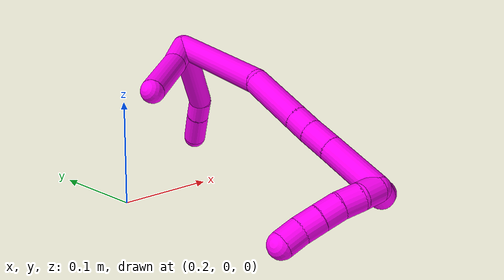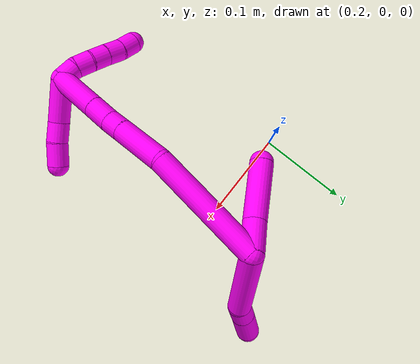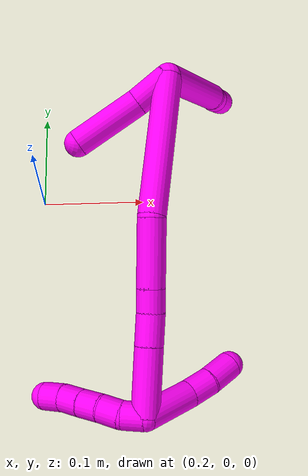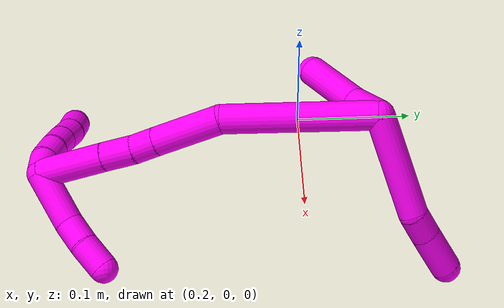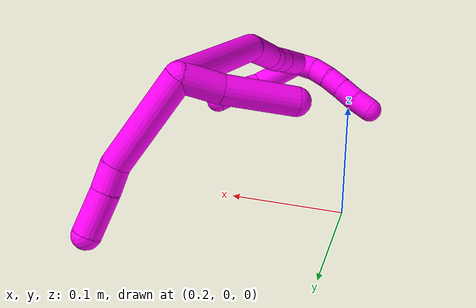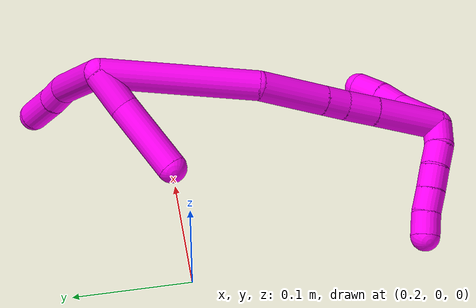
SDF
<sdf version="1.7">
 <world name="default">
  <model name="10">
   <static>0</static>
   <link name="10">
    <collision name="collision-cylinder-e_1_2_8">
     <pose>-0.013976 0.019965 -0.037181 -2.64881 -0.319789 1.14038</pose>
     <geometry><cylinder><radius>0.0125</radius><length>0.088913</length></cylinder></geometry>
     <surface>
      <friction><ode><mu>1.16</mu><mu2>1.16</mu2><slip1>0</slip1><slip2>0</slip2></ode></friction>
      <contact><ode><kp>1e+06</kp><kd>1</kd><max_vel>0</max_vel><min_depth>0.001</min_depth></ode></contact>
     </surface>
    </collision>
    <visual name="visual-cylinder-e_1_2_8">
     <pose>-0.013976 0.019965 -0.037181 -2.64881 -0.319789 1.14038</pose>
     <geometry><cylinder><radius>0.0125</radius><length>0.088913</length></cylinder></geometry>
     <material><ambient>1 0 0.964706 1</ambient></material>
    </visual>
    <collision name="collision-cylinder-e_2_8_9">
     <pose>-0.032063 0.04814 -0.081556 -2.29029 -0.360297 0.763963</pose>
     <geometry><cylinder><radius>0.0125</radius><length>0.023328</length></cylinder></geometry>
     <surface>
      <friction><ode><mu>1.16</mu><mu2>1.16</mu2><slip1>0</slip1><slip2>0</slip2></ode></friction>
      <contact><ode><kp>1e+06</kp><kd>1</kd><max_vel>0</max_vel><min_depth>0.001</min_depth></ode></contact>
     </surface>
    </collision>
    <visual name="visual-cylinder-e_2_8_9">
     <pose>-0.032063 0.04814 -0.081556 -2.29029 -0.360297 0.763963</pose>
     <geometry><cylinder><radius>0.0125</radius><length>0.023328</length></cylinder></geometry>
     <material><ambient>1 0 0.964706 1</ambient></material>
    </visual>
    <collision name="collision-cylinder-e_3_9_6">
     <pose>-0.041897 0.069458 -0.101073 -2.32537 -0.30788 0.689097</pose>
     <geometry><cylinder><radius>0.0125</radius><length>0.037759</length></cylinder></geometry>
     <surface>
      <friction><ode><mu>1.16</mu><mu2>1.16</mu2><slip1>0</slip1><slip2>0</slip2></ode></friction>
      <contact><ode><kp>1e+06</kp><kd>1</kd><max_vel>0</max_vel><min_depth>0.001</min_depth></ode></contact>
     </surface>
    </collision>
    <visual name="visual-cylinder-e_3_9_6">
     <pose>-0.041897 0.069458 -0.101073 -2.32537 -0.30788 0.689097</pose>
     <geometry><cylinder><radius>0.0125</radius><length>0.037759</length></cylinder></geometry>
     <material><ambient>1 0 0.964706 1</ambient></material>
    </visual>
    <collision name="collision-cylinder-e_1_2_10">
     <pose>-0.013743 0.001249 0.01115 -0.111542 -0.886141 0.052973</pose>
     <geometry><cylinder><radius>0.0125</radius><length>0.035483</length></cylinder></geometry>
     <surface>
      <friction><ode><mu>1.16</mu><mu2>1.16</mu2><slip1>0</slip1><slip2>0</slip2></ode></friction>
      <contact><ode><kp>1e+06</kp><kd>1</kd><max_vel>0</max_vel><min_depth>0.001</min_depth></ode></contact>
     </surface>
    </collision>
    <visual name="visual-cylinder-e_1_2_10">
     <pose>-0.013743 0.001249 0.01115 -0.111542 -0.886141 0.052973</pose>
     <geometry><cylinder><radius>0.0125</radius><length>0.035483</length></cylinder></geometry>
     <material><ambient>1 0 0.964706 1</ambient></material>
    </visual>
    <collision name="collision-cylinder-e_2_10_5">
     <pose>-0.049721 0.003245 0.04566 -0.031976 -0.760472 0.012781</pose>
     <geometry><cylinder><radius>0.0125</radius><length>0.064517</length></cylinder></geometry>
     <surface>
      <friction><ode><mu>1.16</mu><mu2>1.16</mu2><slip1>0</slip1><slip2>0</slip2></ode></friction>
      <contact><ode><kp>1e+06</kp><kd>1</kd><max_vel>0</max_vel><min_depth>0.001</min_depth></ode></contact>
     </surface>
    </collision>
    <visual name="visual-cylinder-e_2_10_5">
     <pose>-0.049721 0.003245 0.04566 -0.031976 -0.760472 0.012781</pose>
     <geometry><cylinder><radius>0.0125</radius><length>0.064517</length></cylinder></geometry>
     <material><ambient>1 0 0.964706 1</ambient></material>
    </visual>
    <collision name="collision-cylinder-e_1_2_11">
     <pose>-0.046543 -0.044435 0.014015 1.26527 -0.784861 -0.589246</pose>
     <geometry><cylinder><radius>0.0125</radius><length>0.131715</length></cylinder></geometry>
     <surface>
      <friction><ode><mu>1.16</mu><mu2>1.16</mu2><slip1>0</slip1><slip2>0</slip2></ode></friction>
      <contact><ode><kp>1e+06</kp><kd>1</kd><max_vel>0</max_vel><min_depth>0.001</min_depth></ode></contact>
     </surface>
    </collision>
    <visual name="visual-cylinder-e_1_2_11">
     <pose>-0.046543 -0.044435 0.014015 1.26527 -0.784861 -0.589246</pose>
     <geometry><cylinder><radius>0.0125</radius><length>0.131715</length></cylinder></geometry>
     <material><ambient>1 0 0.964706 1</ambient></material>
    </visual>
    <collision name="collision-cylinder-e_2_11_12">
     <pose>-0.11923 -0.103639 0.027507 1.60616 -1.05635 -1.0874</pose>
     <geometry><cylinder><radius>0.0125</radius><length>0.060062</length></cylinder></geometry>
     <surface>
      <friction><ode><mu>1.16</mu><mu2>1.16</mu2><slip1>0</slip1><slip2>0</slip2></ode></friction>
      <contact><ode><kp>1e+06</kp><kd>1</kd><max_vel>0</max_vel><min_depth>0.001</min_depth></ode></contact>
     </surface>
    </collision>
    <visual name="visual-cylinder-e_2_11_12">
     <pose>-0.11923 -0.103639 0.027507 1.60616 -1.05635 -1.0874</pose>
     <geometry><cylinder><radius>0.0125</radius><length>0.060062</length></cylinder></geometry>
     <material><ambient>1 0 0.964706 1</ambient></material>
    </visual>
    <collision name="collision-cylinder-e_3_12_13">
     <pose>-0.154422 -0.123486 0.026692 1.62847 -1.05844 -1.10943</pose>
     <geometry><cylinder><radius>0.0125</radius><length>0.02076</length></cylinder></geometry>
     <surface>
      <friction><ode><mu>1.16</mu><mu2>1.16</mu2><slip1>0</slip1><slip2>0</slip2></ode></friction>
      <contact><ode><kp>1e+06</kp><kd>1</kd><max_vel>0</max_vel><min_depth>0.001</min_depth></ode></contact>
     </surface>
    </collision>
    <visual name="visual-cylinder-e_3_12_13">
     <pose>-0.154422 -0.123486 0.026692 1.62847 -1.05844 -1.10943</pose>
     <geometry><cylinder><radius>0.0125</radius><length>0.02076</length></cylinder></geometry>
     <material><ambient>1 0 0.964706 1</ambient></material>
    </visual>
    <collision name="collision-cylinder-e_4_13_14">
     <pose>-0.175375 -0.136075 0.027152 1.4707 -1.00587 -0.923513</pose>
     <geometry><cylinder><radius>0.0125</radius><length>0.028192</length></cylinder></geometry>
     <surface>
      <friction><ode><mu>1.16</mu><mu2>1.16</mu2><slip1>0</slip1><slip2>0</slip2></ode></friction>
      <contact><ode><kp>1e+06</kp><kd>1</kd><max_vel>0</max_vel><min_depth>0.001</min_depth></ode></contact>
     </surface>
    </collision>
    <visual name="visual-cylinder-e_4_13_14">
     <pose>-0.175375 -0.136075 0.027152 1.4707 -1.00587 -0.923513</pose>
     <geometry><cylinder><radius>0.0125</radius><length>0.028192</length></cylinder></geometry>
     <material><ambient>1 0 0.964706 1</ambient></material>
    </visual>
    <collision name="collision-cylinder-e_5_14_1">
     <pose>-0.21252 -0.159064 0.029175 1.48907 -1.01913 -0.95098</pose>
     <geometry><cylinder><radius>0.0125</radius><length>0.059271</length></cylinder></geometry>
     <surface>
      <friction><ode><mu>1.16</mu><mu2>1.16</mu2><slip1>0</slip1><slip2>0</slip2></ode></friction>
      <contact><ode><kp>1e+06</kp><kd>1</kd><max_vel>0</max_vel><min_depth>0.001</min_depth></ode></contact>
     </surface>
    </collision>
    <visual name="visual-cylinder-e_5_14_1">
     <pose>-0.21252 -0.159064 0.029175 1.48907 -1.01913 -0.95098</pose>
     <geometry><cylinder><radius>0.0125</radius><length>0.059271</length></cylinder></geometry>
     <material><ambient>1 0 0.964706 1</ambient></material>
    </visual>
    <collision name="collision-cylinder-e_1_1_15">
     <pose>-0.234506 -0.167011 0.007187 -2.82835 0.132285 -0.794349</pose>
     <geometry><cylinder><radius>0.0125</radius><length>0.049321</length></cylinder></geometry>
     <surface>
      <friction><ode><mu>1.16</mu><mu2>1.16</mu2><slip1>0</slip1><slip2>0</slip2></ode></friction>
      <contact><ode><kp>1e+06</kp><kd>1</kd><max_vel>0</max_vel><min_depth>0.001</min_depth></ode></contact>
     </surface>
    </collision>
    <visual name="visual-cylinder-e_1_1_15">
     <pose>-0.234506 -0.167011 0.007187 -2.82835 0.132285 -0.794349</pose>
     <geometry><cylinder><radius>0.0125</radius><length>0.049321</length></cylinder></geometry>
     <material><ambient>1 0 0.964706 1</ambient></material>
    </visual>
    <collision name="collision-cylinder-e_2_15_16">
     <pose>-0.227361 -0.156588 -0.026875 -2.88023 0.334844 -1.81962</pose>
     <geometry><cylinder><radius>0.0125</radius><length>0.023688</length></cylinder></geometry>
     <surface>
      <friction><ode><mu>1.16</mu><mu2>1.16</mu2><slip1>0</slip1><slip2>0</slip2></ode></friction>
      <contact><ode><kp>1e+06</kp><kd>1</kd><max_vel>0</max_vel><min_depth>0.001</min_depth></ode></contact>
     </surface>
    </collision>
    <visual name="visual-cylinder-e_2_15_16">
     <pose>-0.227361 -0.156588 -0.026875 -2.88023 0.334844 -1.81962</pose>
     <geometry><cylinder><radius>0.0125</radius><length>0.023688</length></cylinder></geometry>
     <material><ambient>1 0 0.964706 1</ambient></material>
    </visual>
    <collision name="collision-cylinder-e_3_16_4">
     <pose>-0.219549 -0.148597 -0.049545 -2.73552 0.294751 -1.24947</pose>
     <geometry><cylinder><radius>0.0125</radius><length>0.026991</length></cylinder></geometry>
     <surface>
      <friction><ode><mu>1.16</mu><mu2>1.16</mu2><slip1>0</slip1><slip2>0</slip2></ode></friction>
      <contact><ode><kp>1e+06</kp><kd>1</kd><max_vel>0</max_vel><min_depth>0.001</min_depth></ode></contact>
     </surface>
    </collision>
    <visual name="visual-cylinder-e_3_16_4">
     <pose>-0.219549 -0.148597 -0.049545 -2.73552 0.294751 -1.24947</pose>
     <geometry><cylinder><radius>0.0125</radius><length>0.026991</length></cylinder></geometry>
     <material><ambient>1 0 0.964706 1</ambient></material>
    </visual>
    <collision name="collision-cylinder-e_1_1_17">
     <pose>-0.240809 -0.169485 0.038511 -0.560086 -0.309917 0.089792</pose>
     <geometry><cylinder><radius>0.0125</radius><length>0.02</length></cylinder></geometry>
     <surface>
      <friction><ode><mu>1.16</mu><mu2>1.16</mu2><slip1>0</slip1><slip2>0</slip2></ode></friction>
      <contact><ode><kp>1e+06</kp><kd>1</kd><max_vel>0</max_vel><min_depth>0.001</min_depth></ode></contact>
     </surface>
    </collision>
    <visual name="visual-cylinder-e_1_1_17">
     <pose>-0.240809 -0.169485 0.038511 -0.560086 -0.309917 0.089792</pose>
     <geometry><cylinder><radius>0.0125</radius><length>0.02</length></cylinder></geometry>
     <material><ambient>1 0 0.964706 1</ambient></material>
    </visual>
    <collision name="collision-cylinder-e_2_17_18">
     <pose>-0.246174 -0.157136 0.053022 -0.846989 -0.233638 0.1057</pose>
     <geometry><cylinder><radius>0.0125</radius><length>0.02</length></cylinder></geometry>
     <surface>
      <friction><ode><mu>1.16</mu><mu2>1.16</mu2><slip1>0</slip1><slip2>0</slip2></ode></friction>
      <contact><ode><kp>1e+06</kp><kd>1</kd><max_vel>0</max_vel><min_depth>0.001</min_depth></ode></contact>
     </surface>
    </collision>
    <visual name="visual-cylinder-e_2_17_18">
     <pose>-0.246174 -0.157136 0.053022 -0.846989 -0.233638 0.1057</pose>
     <geometry><cylinder><radius>0.0125</radius><length>0.02</length></cylinder></geometry>
     <material><ambient>1 0 0.964706 1</ambient></material>
    </visual>
    <collision name="collision-cylinder-e_3_18_19">
     <pose>-0.251962 -0.142347 0.065094 -0.926869 -0.354691 0.178656</pose>
     <geometry><cylinder><radius>0.0125</radius><length>0.02</length></cylinder></geometry>
     <surface>
      <friction><ode><mu>1.16</mu><mu2>1.16</mu2><slip1>0</slip1><slip2>0</slip2></ode></friction>
      <contact><ode><kp>1e+06</kp><kd>1</kd><max_vel>0</max_vel><min_depth>0.001</min_depth></ode></contact>
     </surface>
    </collision>
    <visual name="visual-cylinder-e_3_18_19">
     <pose>-0.251962 -0.142347 0.065094 -0.926869 -0.354691 0.178656</pose>
     <geometry><cylinder><radius>0.0125</radius><length>0.02</length></cylinder></geometry>
     <material><ambient>1 0 0.964706 1</ambient></material>
    </visual>
    <collision name="collision-cylinder-e_4_19_20">
     <pose>-0.258908 -0.127111 0.076024 -0.970171 -0.35465 0.188358</pose>
     <geometry><cylinder><radius>0.0125</radius><length>0.02</length></cylinder></geometry>
     <surface>
      <friction><ode><mu>1.16</mu><mu2>1.16</mu2><slip1>0</slip1><slip2>0</slip2></ode></friction>
      <contact><ode><kp>1e+06</kp><kd>1</kd><max_vel>0</max_vel><min_depth>0.001</min_depth></ode></contact>
     </surface>
    </collision>
    <visual name="visual-cylinder-e_4_19_20">
     <pose>-0.258908 -0.127111 0.076024 -0.970171 -0.35465 0.188358</pose>
     <geometry><cylinder><radius>0.0125</radius><length>0.02</length></cylinder></geometry>
     <material><ambient>1 0 0.964706 1</ambient></material>
    </visual>
    <collision name="collision-cylinder-e_5_20_3">
     <pose>-0.266826 -0.112721 0.087321 -0.837242 -0.460748 0.207949</pose>
     <geometry><cylinder><radius>0.0125</radius><length>0.02</length></cylinder></geometry>
     <surface>
      <friction><ode><mu>1.16</mu><mu2>1.16</mu2><slip1>0</slip1><slip2>0</slip2></ode></friction>
      <contact><ode><kp>1e+06</kp><kd>1</kd><max_vel>0</max_vel><min_depth>0.001</min_depth></ode></contact>
     </surface>
    </collision>
    <visual name="visual-cylinder-e_5_20_3">
     <pose>-0.266826 -0.112721 0.087321 -0.837242 -0.460748 0.207949</pose>
     <geometry><cylinder><radius>0.0125</radius><length>0.02</length></cylinder></geometry>
     <material><ambient>1 0 0.964706 1</ambient></material>
    </visual>
    <collision name="collision-sphere-3">
     <pose>-0.271273 -0.106067 0.093318 0 -0 0</pose>
     <geometry><sphere><radius>0.0125</radius></sphere></geometry>
     <surface>
      <friction><ode><mu>1.16</mu><mu2>1.16</mu2><slip1>0</slip1><slip2>0</slip2></ode></friction>
      <contact><ode><kp>1e+06</kp><kd>1</kd><max_vel>0</max_vel><min_depth>0.001</min_depth></ode></contact>
     </surface>
    </collision>
    <visual name="visual-sphere-3">
     <pose>-0.271273 -0.106067 0.093318 0 -0 0</pose>
     <geometry><sphere><radius>0.0125</radius></sphere></geometry>
     <material><ambient>1 0 0.964706 1</ambient></material>
    </visual>
    <collision name="collision-sphere-20">
     <pose>-0.26238 -0.119374 0.081324 0 -0 0</pose>
     <geometry><sphere><radius>0.0125</radius></sphere></geometry>
     <surface>
      <friction><ode><mu>1.16</mu><mu2>1.16</mu2><slip1>0</slip1><slip2>0</slip2></ode></friction>
      <contact><ode><kp>1e+06</kp><kd>1</kd><max_vel>0</max_vel><min_depth>0.001</min_depth></ode></contact>
     </surface>
    </collision>
    <visual name="visual-sphere-20">
     <pose>-0.26238 -0.119374 0.081324 0 -0 0</pose>
     <geometry><sphere><radius>0.0125</radius></sphere></geometry>
     <material><ambient>1 0 0.964706 1</ambient></material>
    </visual>
    <collision name="collision-sphere-19">
     <pose>-0.255435 -0.134847 0.070724 0 -0 0</pose>
     <geometry><sphere><radius>0.0125</radius></sphere></geometry>
     <surface>
      <friction><ode><mu>1.16</mu><mu2>1.16</mu2><slip1>0</slip1><slip2>0</slip2></ode></friction>
      <contact><ode><kp>1e+06</kp><kd>1</kd><max_vel>0</max_vel><min_depth>0.001</min_depth></ode></contact>
     </surface>
    </collision>
    <visual name="visual-sphere-19">
     <pose>-0.255435 -0.134847 0.070724 0 -0 0</pose>
     <geometry><sphere><radius>0.0125</radius></sphere></geometry>
     <material><ambient>1 0 0.964706 1</ambient></material>
    </visual>
    <collision name="collision-sphere-5">
     <pose>-0.071956 0.003992 0.06902 0 -0 0</pose>
     <geometry><sphere><radius>0.0125</radius></sphere></geometry>
     <surface>
      <friction><ode><mu>1.16</mu><mu2>1.16</mu2><slip1>0</slip1><slip2>0</slip2></ode></friction>
      <contact><ode><kp>1e+06</kp><kd>1</kd><max_vel>0</max_vel><min_depth>0.001</min_depth></ode></contact>
     </surface>
    </collision>
    <visual name="visual-sphere-5">
     <pose>-0.071956 0.003992 0.06902 0 -0 0</pose>
     <geometry><sphere><radius>0.0125</radius></sphere></geometry>
     <material><ambient>1 0 0.964706 1</ambient></material>
    </visual>
    <collision name="collision-sphere-10">
     <pose>-0.027486 0.002498 0.0223 0 -0 0</pose>
     <geometry><sphere><radius>0.0125</radius></sphere></geometry>
     <surface>
      <friction><ode><mu>1.16</mu><mu2>1.16</mu2><slip1>0</slip1><slip2>0</slip2></ode></friction>
      <contact><ode><kp>1e+06</kp><kd>1</kd><max_vel>0</max_vel><min_depth>0.001</min_depth></ode></contact>
     </surface>
    </collision>
    <visual name="visual-sphere-10">
     <pose>-0.027486 0.002498 0.0223 0 -0 0</pose>
     <geometry><sphere><radius>0.0125</radius></sphere></geometry>
     <material><ambient>1 0 0.964706 1</ambient></material>
    </visual>
    <collision name="collision-sphere-6">
     <pose>-0.047618 0.082566 -0.113397 0 -0 0</pose>
     <geometry><sphere><radius>0.0125</radius></sphere></geometry>
     <surface>
      <friction><ode><mu>1.16</mu><mu2>1.16</mu2><slip1>0</slip1><slip2>0</slip2></ode></friction>
      <contact><ode><kp>1e+06</kp><kd>1</kd><max_vel>0</max_vel><min_depth>0.001</min_depth></ode></contact>
     </surface>
    </collision>
    <visual name="visual-sphere-6">
     <pose>-0.047618 0.082566 -0.113397 0 -0 0</pose>
     <geometry><sphere><radius>0.0125</radius></sphere></geometry>
     <material><ambient>1 0 0.964706 1</ambient></material>
    </visual>
    <collision name="collision-sphere-9">
     <pose>-0.036176 0.05635 -0.088749 0 -0 0</pose>
     <geometry><sphere><radius>0.0125</radius></sphere></geometry>
     <surface>
      <friction><ode><mu>1.16</mu><mu2>1.16</mu2><slip1>0</slip1><slip2>0</slip2></ode></friction>
      <contact><ode><kp>1e+06</kp><kd>1</kd><max_vel>0</max_vel><min_depth>0.001</min_depth></ode></contact>
     </surface>
    </collision>
    <visual name="visual-sphere-9">
     <pose>-0.036176 0.05635 -0.088749 0 -0 0</pose>
     <geometry><sphere><radius>0.0125</radius></sphere></geometry>
     <material><ambient>1 0 0.964706 1</ambient></material>
    </visual>
    <collision name="collision-sphere-2">
     <geometry><sphere><radius>0.0125</radius></sphere></geometry>
     <surface>
      <friction><ode><mu>1.16</mu><mu2>1.16</mu2><slip1>0</slip1><slip2>0</slip2></ode></friction>
      <contact><ode><kp>1e+06</kp><kd>1</kd><max_vel>0</max_vel><min_depth>0.001</min_depth></ode></contact>
     </surface>
    </collision>
    <visual name="visual-sphere-2">
     <geometry><sphere><radius>0.0125</radius></sphere></geometry>
     <material><ambient>1 0 0.964706 1</ambient></material>
    </visual>
    <collision name="collision-sphere-8">
     <pose>-0.027951 0.03993 -0.074363 0 -0 0</pose>
     <geometry><sphere><radius>0.0125</radius></sphere></geometry>
     <surface>
      <friction><ode><mu>1.16</mu><mu2>1.16</mu2><slip1>0</slip1><slip2>0</slip2></ode></friction>
      <contact><ode><kp>1e+06</kp><kd>1</kd><max_vel>0</max_vel><min_depth>0.001</min_depth></ode></contact>
     </surface>
    </collision>
    <visual name="visual-sphere-8">
     <pose>-0.027951 0.03993 -0.074363 0 -0 0</pose>
     <geometry><sphere><radius>0.0125</radius></sphere></geometry>
     <material><ambient>1 0 0.964706 1</ambient></material>
    </visual>
    <collision name="collision-sphere-11">
     <pose>-0.093086 -0.088871 0.02803 0 -0 0</pose>
     <geometry><sphere><radius>0.0125</radius></sphere></geometry>
     <surface>
      <friction><ode><mu>1.16</mu><mu2>1.16</mu2><slip1>0</slip1><slip2>0</slip2></ode></friction>
      <contact><ode><kp>1e+06</kp><kd>1</kd><max_vel>0</max_vel><min_depth>0.001</min_depth></ode></contact>
     </surface>
    </collision>
    <visual name="visual-sphere-11">
     <pose>-0.093086 -0.088871 0.02803 0 -0 0</pose>
     <geometry><sphere><radius>0.0125</radius></sphere></geometry>
     <material><ambient>1 0 0.964706 1</ambient></material>
    </visual>
    <collision name="collision-sphere-12">
     <pose>-0.145374 -0.118406 0.026985 0 -0 0</pose>
     <geometry><sphere><radius>0.0125</radius></sphere></geometry>
     <surface>
      <friction><ode><mu>1.16</mu><mu2>1.16</mu2><slip1>0</slip1><slip2>0</slip2></ode></friction>
      <contact><ode><kp>1e+06</kp><kd>1</kd><max_vel>0</max_vel><min_depth>0.001</min_depth></ode></contact>
     </surface>
    </collision>
    <visual name="visual-sphere-12">
     <pose>-0.145374 -0.118406 0.026985 0 -0 0</pose>
     <geometry><sphere><radius>0.0125</radius></sphere></geometry>
     <material><ambient>1 0 0.964706 1</ambient></material>
    </visual>
    <collision name="collision-sphere-13">
     <pose>-0.163469 -0.128567 0.026398 0 -0 0</pose>
     <geometry><sphere><radius>0.0125</radius></sphere></geometry>
     <surface>
      <friction><ode><mu>1.16</mu><mu2>1.16</mu2><slip1>0</slip1><slip2>0</slip2></ode></friction>
      <contact><ode><kp>1e+06</kp><kd>1</kd><max_vel>0</max_vel><min_depth>0.001</min_depth></ode></contact>
     </surface>
    </collision>
    <visual name="visual-sphere-13">
     <pose>-0.163469 -0.128567 0.026398 0 -0 0</pose>
     <geometry><sphere><radius>0.0125</radius></sphere></geometry>
     <material><ambient>1 0 0.964706 1</ambient></material>
    </visual>
    <collision name="collision-sphere-14">
     <pose>-0.187281 -0.143584 0.027907 0 -0 0</pose>
     <geometry><sphere><radius>0.0125</radius></sphere></geometry>
     <surface>
      <friction><ode><mu>1.16</mu><mu2>1.16</mu2><slip1>0</slip1><slip2>0</slip2></ode></friction>
      <contact><ode><kp>1e+06</kp><kd>1</kd><max_vel>0</max_vel><min_depth>0.001</min_depth></ode></contact>
     </surface>
    </collision>
    <visual name="visual-sphere-14">
     <pose>-0.187281 -0.143584 0.027907 0 -0 0</pose>
     <geometry><sphere><radius>0.0125</radius></sphere></geometry>
     <material><ambient>1 0 0.964706 1</ambient></material>
    </visual>
    <collision name="collision-sphere-1">
     <pose>-0.237759 -0.174544 0.030443 0 -0 0</pose>
     <geometry><sphere><radius>0.0125</radius></sphere></geometry>
     <surface>
      <friction><ode><mu>1.16</mu><mu2>1.16</mu2><slip1>0</slip1><slip2>0</slip2></ode></friction>
      <contact><ode><kp>1e+06</kp><kd>1</kd><max_vel>0</max_vel><min_depth>0.001</min_depth></ode></contact>
     </surface>
    </collision>
    <visual name="visual-sphere-1">
     <pose>-0.237759 -0.174544 0.030443 0 -0 0</pose>
     <geometry><sphere><radius>0.0125</radius></sphere></geometry>
     <material><ambient>1 0 0.964706 1</ambient></material>
    </visual>
    <collision name="collision-sphere-18">
     <pose>-0.248489 -0.149846 0.059464 0 -0 0</pose>
     <geometry><sphere><radius>0.0125</radius></sphere></geometry>
     <surface>
      <friction><ode><mu>1.16</mu><mu2>1.16</mu2><slip1>0</slip1><slip2>0</slip2></ode></friction>
      <contact><ode><kp>1e+06</kp><kd>1</kd><max_vel>0</max_vel><min_depth>0.001</min_depth></ode></contact>
     </surface>
    </collision>
    <visual name="visual-sphere-18">
     <pose>-0.248489 -0.149846 0.059464 0 -0 0</pose>
     <geometry><sphere><radius>0.0125</radius></sphere></geometry>
     <material><ambient>1 0 0.964706 1</ambient></material>
    </visual>
    <collision name="collision-sphere-15">
     <pose>-0.231254 -0.159479 -0.016069 0 -0 0</pose>
     <geometry><sphere><radius>0.0125</radius></sphere></geometry>
     <surface>
      <friction><ode><mu>1.16</mu><mu2>1.16</mu2><slip1>0</slip1><slip2>0</slip2></ode></friction>
      <contact><ode><kp>1e+06</kp><kd>1</kd><max_vel>0</max_vel><min_depth>0.001</min_depth></ode></contact>
     </surface>
    </collision>
    <visual name="visual-sphere-15">
     <pose>-0.231254 -0.159479 -0.016069 0 -0 0</pose>
     <geometry><sphere><radius>0.0125</radius></sphere></geometry>
     <material><ambient>1 0 0.964706 1</ambient></material>
    </visual>
    <collision name="collision-sphere-16">
     <pose>-0.223469 -0.153698 -0.037682 0 -0 0</pose>
     <geometry><sphere><radius>0.0125</radius></sphere></geometry>
     <surface>
      <friction><ode><mu>1.16</mu><mu2>1.16</mu2><slip1>0</slip1><slip2>0</slip2></ode></friction>
      <contact><ode><kp>1e+06</kp><kd>1</kd><max_vel>0</max_vel><min_depth>0.001</min_depth></ode></contact>
     </surface>
    </collision>
    <visual name="visual-sphere-16">
     <pose>-0.223469 -0.153698 -0.037682 0 -0 0</pose>
     <geometry><sphere><radius>0.0125</radius></sphere></geometry>
     <material><ambient>1 0 0.964706 1</ambient></material>
    </visual>
    <collision name="collision-sphere-4">
     <pose>-0.215628 -0.143496 -0.061408 0 -0 0</pose>
     <geometry><sphere><radius>0.0125</radius></sphere></geometry>
     <surface>
      <friction><ode><mu>1.16</mu><mu2>1.16</mu2><slip1>0</slip1><slip2>0</slip2></ode></friction>
      <contact><ode><kp>1e+06</kp><kd>1</kd><max_vel>0</max_vel><min_depth>0.001</min_depth></ode></contact>
     </surface>
    </collision>
    <visual name="visual-sphere-4">
     <pose>-0.215628 -0.143496 -0.061408 0 -0 0</pose>
     <geometry><sphere><radius>0.0125</radius></sphere></geometry>
     <material><ambient>1 0 0.964706 1</ambient></material>
    </visual>
    <collision name="collision-sphere-17">
     <pose>-0.243859 -0.164425 0.046579 0 -0 0</pose>
     <geometry><sphere><radius>0.0125</radius></sphere></geometry>
     <surface>
      <friction><ode><mu>1.16</mu><mu2>1.16</mu2><slip1>0</slip1><slip2>0</slip2></ode></friction>
      <contact><ode><kp>1e+06</kp><kd>1</kd><max_vel>0</max_vel><min_depth>0.001</min_depth></ode></contact>
     </surface>
    </collision>
    <visual name="visual-sphere-17">
     <pose>-0.243859 -0.164425 0.046579 0 -0 0</pose>
     <geometry><sphere><radius>0.0125</radius></sphere></geometry>
     <material><ambient>1 0 0.964706 1</ambient></material>
    </visual>
    <inertial>
     <pose>-0.119303 -0.069685 0.007525 0 -0 0</pose>
     <mass>0.75</mass>
     <inertia>
      <ixx>0.000116</ixx>
      <ixy>0</ixy>
      <ixz>0</ixz>
      <iyy>0.000118</iyy>
      <iyz>0</iyz>
      <izz>0.000326</izz>
     </inertia>
    </inertial>
   </link>
   <pose>0.323618 0.056752 0.134796 -0.886863 -0.8917 1.16056</pose>
  </model>
 </world>
</sdf>
